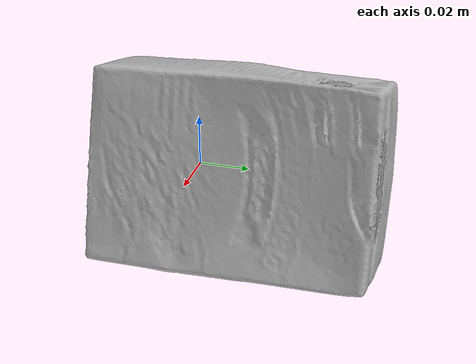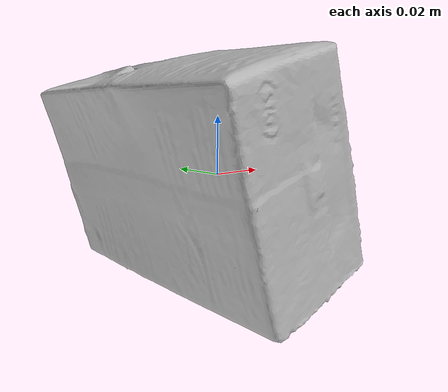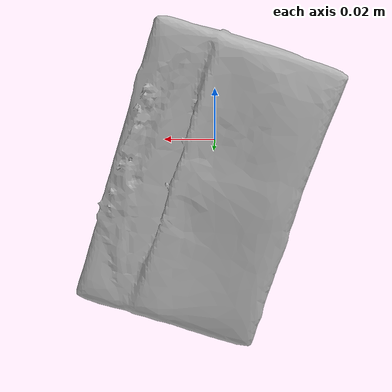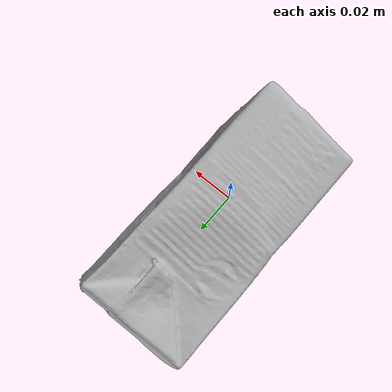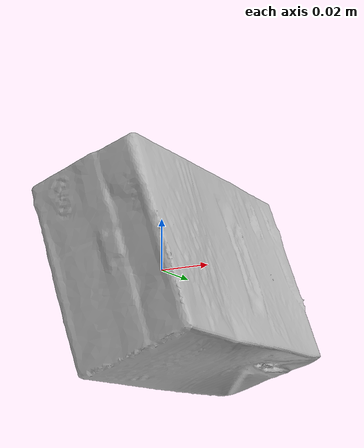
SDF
<?xml version='1.0'?>
<sdf version="1.4">
  <model name="TomatoHerbSauce">
    <static>false</static>
    <link name="link">
      <inertial>
        <pose>0.0002563380597626488 0.017335437527471537 -8.8928475348763e-05 -1.586771239041483 0.3169782836011999 3.1253082935325027</pose>
        <mass>0.0420672803755552</mass>
        <inertia>
          <ixx>6.401471576499472e-05</ixx>
          <ixy>1.5174070377012471e-22</ixy>
          <ixz>-7.394132753893932e-21</ixz>
          <iyy>5.0834815949145084e-05</iyy>
          <iyz>-2.1275028794335476e-20</iyz>
          <izz>2.9384803518360506e-05</izz>
        </inertia>
      </inertial>
      <collision name="collision">
        <geometry>
          <mesh>
            <!-- Use a downsampled mesh for collisions -->
            <uri>model:///TomatoHerbSauce/TomatoHerbSauce_250_collision.obj</uri>
	        </mesh>
        </geometry>
        <surface>
      </surface>
      </collision>
      <visual name="visual">
        <geometry>
          <mesh>
            <uri>model:///TomatoHerbSauce/TomatoHerbSauce_25k_tex.obj</uri>
	        </mesh>
        </geometry>
        <material>
          <script>
            <uri>model:///TomatoHerbSauce/TomatoHerbSauce.material</uri>
            <name>TomatoHerbSauce</name>
          </script>
        </material>
      </visual>
    </link>
  </model>
</sdf>
